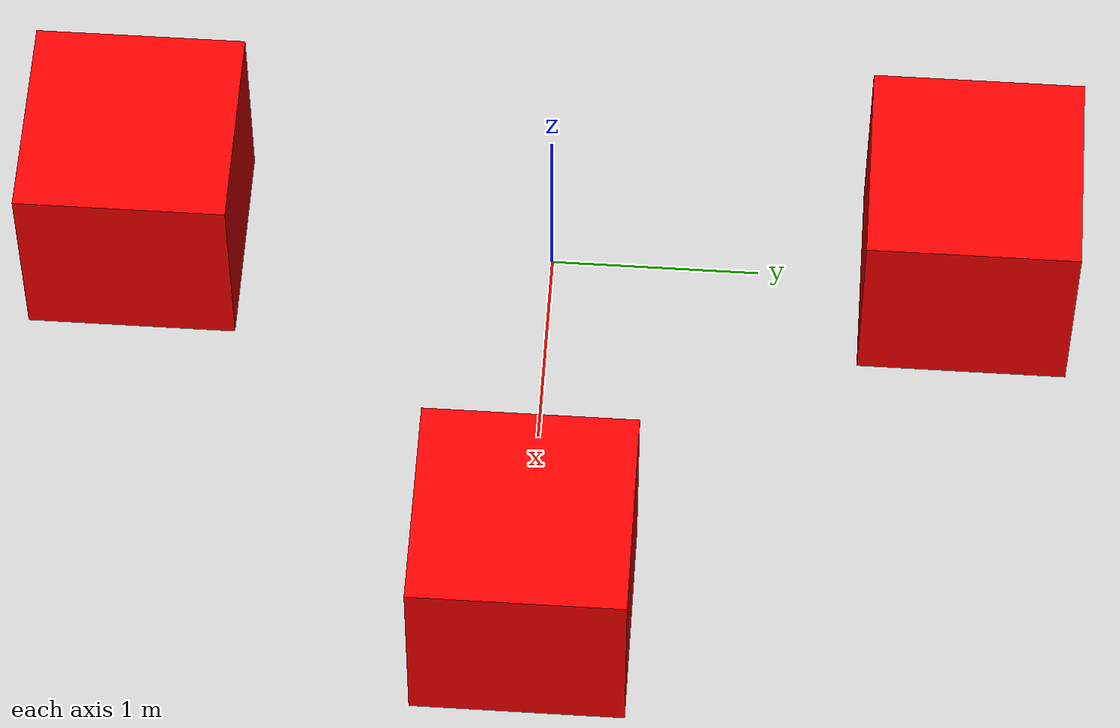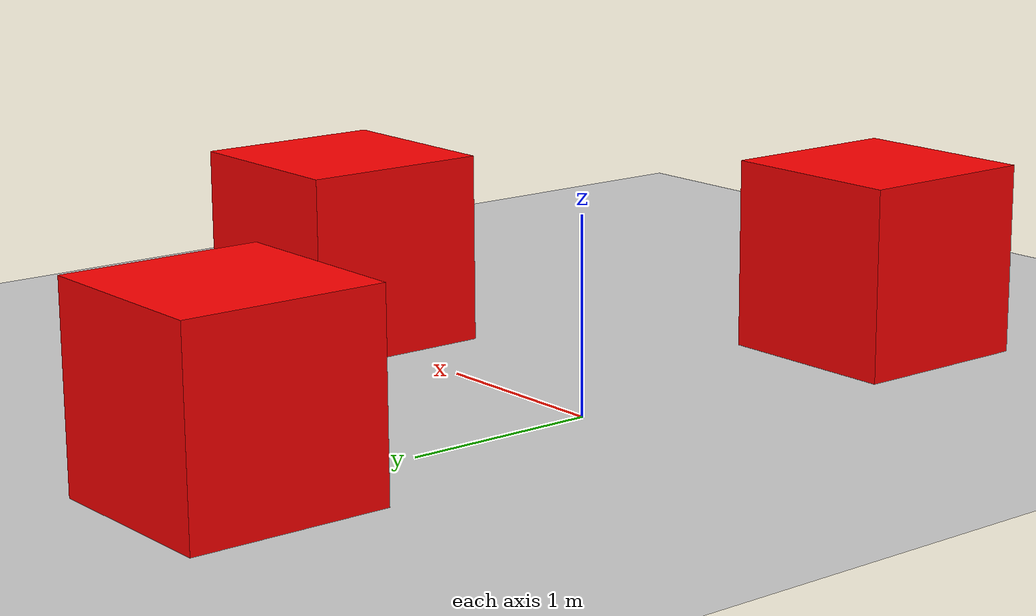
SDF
<?xml version="1.0" ?>
<sdf version="1.6">
  <world name="trajectory_follower">

    <physics name="1ms" type="ignored">
      <max_step_size>0.001</max_step_size>
      <real_time_factor>1.0</real_time_factor>
    </physics>
    <plugin
      filename="ignition-gazebo-physics-system"
      name="ignition::gazebo::systems::Physics">
    </plugin>
    <plugin
      filename="ignition-gazebo-user-commands-system"
      name="ignition::gazebo::systems::UserCommands">
    </plugin>
    <plugin
      filename="ignition-gazebo-scene-broadcaster-system"
      name="ignition::gazebo::systems::SceneBroadcaster">
    </plugin>

 <gui fullscreen="0">

      <!-- 3D scene -->
      <plugin filename="GzScene3D" name="3D View">
        <ignition-gui>
          <title>3D View</title>
          <property type="bool" key="showTitleBar">false</property>
          <property type="string" key="state">docked</property>
        </ignition-gui>

        <engine>ogre2</engine>
        <scene>scene</scene>
        <ambient_light>0.4 0.4 0.4</ambient_light>
        <background_color>0.8 0.8 0.8</background_color>
        <camera_pose>5 -1.5 3 0 0.37 2.8</camera_pose>
      </plugin>

      <!-- World control -->
      <plugin filename="WorldControl" name="World control">
        <ignition-gui>
          <title>World control</title>
          <property type="bool" key="showTitleBar">false</property>
          <property type="bool" key="resizable">false</property>
          <property type="double" key="height">72</property>
          <property type="double" key="width">121</property>
          <property type="double" key="z">1</property>

          <property type="string" key="state">floating</property>
          <anchors target="3D View">
            <line own="left" target="left"/>
            <line own="bottom" target="bottom"/>
          </anchors>
        </ignition-gui>

        <play_pause>true</play_pause>
        <step>true</step>
        <start_paused>true</start_paused>
      </plugin>

      <!-- World statistics -->
      <plugin filename="WorldStats" name="World stats">
        <ignition-gui>
          <title>World stats</title>
          <property type="bool" key="showTitleBar">false</property>
          <property type="bool" key="resizable">false</property>
          <property type="double" key="height">110</property>
          <property type="double" key="width">290</property>
          <property type="double" key="z">1</property>

          <property type="string" key="state">floating</property>
          <anchors target="3D View">
            <line own="right" target="right"/>
            <line own="bottom" target="bottom"/>
          </anchors>
        </ignition-gui>

        <sim_time>true</sim_time>
        <real_time>true</real_time>
        <real_time_factor>true</real_time_factor>
        <iterations>true</iterations>
      </plugin>

      <!-- Entity tree -->
      <plugin filename="EntityTree" name="Entity tree">
      </plugin>

      <!-- Plot 3D: lower link -->
      <plugin filename="Plot3D" name="Plot 3D">
        <ignition-gui>
          <title>way point</title>
        </ignition-gui>
        <entity_name>way_point_link</entity_name>
        <color>0 0 1</color>
        <offset>0 0 0.1</offset>
        <maximum_points>1000</maximum_points>
        <minimum_distance>0.1</minimum_distance>
      </plugin>
    </gui>

    <light type="directional" name="sun">
      <cast_shadows>true</cast_shadows>
      <pose>0 0 10 0 0 0</pose>
      <diffuse>1 1 1 1</diffuse>
      <specular>0.5 0.5 0.5 1</specular>
      <attenuation>
        <range>1000</range>
        <constant>0.9</constant>
        <linear>0.01</linear>
        <quadratic>0.001</quadratic>
      </attenuation>
      <direction>-0.5 0.1 -0.9</direction>
    </light>

    <model name="ground_plane">
      <static>true</static>
      <link name="link">
        <collision name="collision">
          <geometry>
            <plane>
              <normal>0 0 1</normal>
              <size>100 100</size>
            </plane>
          </geometry>
        </collision>
        <visual name="visual">
          <geometry>
            <plane>
              <normal>0 0 1</normal>
              <size>100 100</size>
            </plane>
          </geometry>
          <material>
            <ambient>0.8 0.8 0.8 1</ambient>
            <diffuse>0.8 0.8 0.8 1</diffuse>
            <specular>0.8 0.8 0.8 1</specular>
          </material>
        </visual>
      </link>
    </model>

    <model name="box">
      <pose>2 0 0.5 0 0 0</pose>
      <link name="box_link">
        <inertial>
          <inertia>
            <ixx>0.16666</ixx>
            <ixy>0</ixy>
            <ixz>0</ixz>
            <iyy>0.16666</iyy>
            <iyz>0</iyz>
            <izz>0.16666</izz>
          </inertia>
          <mass>1.0</mass>
        </inertial>
        <collision name="box_collision">
          <geometry>
            <box>
              <size>1 1 1</size>
            </box>
          </geometry>
        </collision>

        <visual name="box_visual">
          <geometry>
            <box>
              <size>1 1 1</size>
            </box>
          </geometry>
          <material>
            <ambient>1 0 0 1</ambient>
            <diffuse>1 0 0 1</diffuse>
            <specular>1 0 0 1</specular>
          </material>
        </visual>
      </link>

      <plugin
        filename="ignition-gazebo-trajectory-follower-system"
        name="ignition::gazebo::systems::TrajectoryFollower">
        <link_name>box_link</link_name>
        <loop>true</loop>
        <force>10</force>
        <torque>10</torque>
        <waypoints>
          <waypoint>2 0</waypoint>
          <waypoint>7 0</waypoint>
        </waypoints>
      </plugin>

    </model>

    <model name="box_2">
      <pose>0 2 0.5 0 0 1.5708</pose>
      <link name="box_link">
        <inertial>
          <inertia>
            <ixx>0.16666</ixx>
            <ixy>0</ixy>
            <ixz>0</ixz>
            <iyy>0.16666</iyy>
            <iyz>0</iyz>
            <izz>0.16666</izz>
          </inertia>
          <mass>1.0</mass>
        </inertial>
        <collision name="box_collision">
          <geometry>
            <box>
              <size>1 1 1</size>
            </box>
          </geometry>
        </collision>

        <visual name="box_visual">
          <geometry>
            <box>
              <size>1 1 1</size>
            </box>
          </geometry>
          <material>
            <ambient>1 0 0 1</ambient>
            <diffuse>1 0 0 1</diffuse>
            <specular>1 0 0 1</specular>
          </material>
        </visual>
      </link>

      <plugin
        filename="ignition-gazebo-trajectory-follower-system"
        name="ignition::gazebo::systems::TrajectoryFollower">
        <link_name>box_link</link_name>
        <loop>true</loop>
        <force>10</force>
        <torque>10</torque>
        <line>
          <direction>0</direction>
          <length>5</length>
        </line>
      </plugin>

    </model>

    <model name="box_3">
      <pose>0 -2 0.5 0 0 -1.5708</pose>
      <link name="box_link">
        <inertial>
          <inertia>
            <ixx>0.16666</ixx>
            <ixy>0</ixy>
            <ixz>0</ixz>
            <iyy>0.16666</iyy>
            <iyz>0</iyz>
            <izz>0.16666</izz>
          </inertia>
          <mass>1.0</mass>
        </inertial>
        <collision name="box_collision">
          <geometry>
            <box>
              <size>1 1 1</size>
            </box>
          </geometry>
        </collision>

        <visual name="box_visual">
          <geometry>
            <box>
              <size>1 1 1</size>
            </box>
          </geometry>
          <material>
            <ambient>1 0 0 1</ambient>
            <diffuse>1 0 0 1</diffuse>
            <specular>1 0 0 1</specular>
          </material>
        </visual>
      </link>

      <plugin
        filename="ignition-gazebo-trajectory-follower-system"
        name="ignition::gazebo::systems::TrajectoryFollower">
        <link_name>box_link</link_name>
        <loop>true</loop>
        <force>10</force>
        <torque>10</torque>
        <line>
          <direction>0</direction>
          <length>5</length>
        </line>
      </plugin>

    </model>

  </world>
</sdf>
